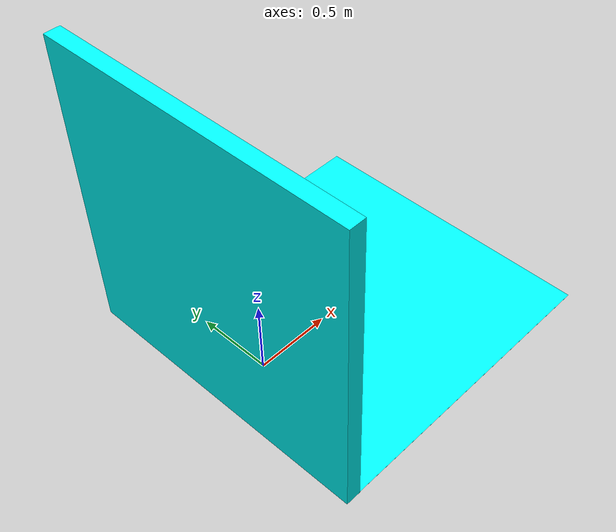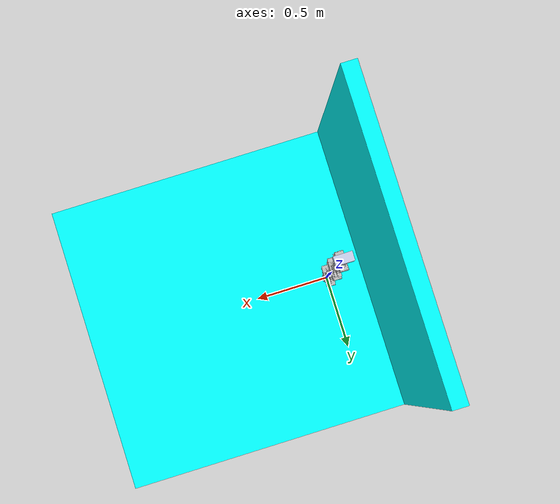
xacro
<?xml version="1.0"?>
<!-- Revolute-Revolute Manipulator -->
<robot name="robotarm_5DOF" xmlns:xacro="http://www.ros.org/wiki/xacro">

 <!-- Import all Gazebo-customization elements, including Gazebo colors -->
  <xacro:include filename="$(find manipulator_h_description)/urdf/robotarm_5DOF.gazebo" />

 <!-- Used for fixing robot to Gazebo 'base_link' -->
 <link name="world">
  </link>

  <joint name="world" type="fixed">
    <origin xyz="0 0 0" rpy="0 0 0"/>
    <parent link="world"/>
    <child link="base_link"/>
  </joint>

  <link name="base_link">
    <inertial>
      <origin
        xyz="0 0 0.12" rpy="0 0 1.57" />
      <mass
        value="0.854996764620972" />
      <inertia
        ixx="0.00127367657233133"
        ixy="-9.78923195537527E-13"
        ixz="-2.93635909372344E-13"
        iyy="0.00127209146192002"
        iyz="1.73326120869336E-07"
        izz="0.000375253307095422" />
    </inertial>
    <visual>
      <origin
        xyz="0 0 0.12" rpy="0 0 1.57" />
      <geometry>
        <mesh
          filename="package://manipulator_h_description/meshes_5DOF/base_link.STL" />
      </geometry>
      <material
        name="">
        <color
          rgba="0.792156862745098 0.819607843137255 0.929411764705882 1" />
      </material>
    </visual>
    <collision>
      <origin
        xyz="0 0 0.12" rpy="0 0 1.57" />
      <geometry>
        <mesh
          filename="package://manipulator_h_description/meshes_5DOF/base_link.STL" />
      </geometry>
    </collision>
  </link>

	<joint name="joint1" type="revolute">
		<origin xyz="0 0 0.159" rpy="0 0 0" />
		<parent link="base_link" />
		<child link="link1" />
        <limit velocity="6.5" effort="1000" lower="-3.14" upper="3.14" />
        <dynamics damping="1"/>
		<axis xyz="0 0 1" />
	</joint>

  <transmission name="tran1">
    <type>transmission_interface/SimpleTransmission</type>
    <joint name="joint1">
      <hardwareInterface>EffortJointInterface</hardwareInterface>
    </joint>
    <actuator name="motor1">
      <hardwareInterface>EffortJointInterface</hardwareInterface>
      <mechanicalReduction>1</mechanicalReduction>
    </actuator>
  </transmission>

  <link
    name="link1">
    <inertial>
      <origin
        xyz="0 0 -0.039" rpy="3.14 0 0" />
      <mass
        value="0.933973833115025" />
      <inertia
        ixx="0.00130038494228848"
        ixy="-2.95844372439728E-13"
        ixz="-3.01467763831998E-11"
        iyy="0.000422142499355785"
        iyz="-1.73339894386112E-07"
        izz="0.0013123580996147" />
    </inertial>
    <visual>
      <origin
        xyz="0 0 -0.039" rpy="3.14 0 0" />
      <geometry>
        <mesh
          filename="package://manipulator_h_description/meshes_5DOF/link1.STL" />
      </geometry>
      <material
        name="">
        <color
          rgba="0.752941176470588 0.752941176470588 0.752941176470588 1" />
      </material>
    </visual>
    <collision>
      <origin
        xyz="0 0 -0.039" rpy="3.14 0 0" />
      <geometry>
        <mesh
          filename="package://manipulator_h_description/meshes_5DOF/link1.STL" />
      </geometry>
    </collision>
  </link>

	<joint name="joint2" type="revolute">
		<origin xyz="0 0 0" rpy="1.57 0 0" />
		<parent link="link1" />
		<child link="link2" />
		<axis xyz="0 0 1" />
        <limit velocity="6.5" effort="1000" lower="-3.14" upper="3.14" />
        <dynamics damping="1"/>
	</joint>

  <transmission name="tran2">
    <type>transmission_interface/SimpleTransmission</type>
    <joint name="joint2">
      <hardwareInterface>EffortJointInterface</hardwareInterface>
    </joint>
    <actuator name="motor2">
      <hardwareInterface>EffortJointInterface</hardwareInterface>
      <mechanicalReduction>1</mechanicalReduction>
    </actuator>
  </transmission>

  <link
    name="link2">
    <inertial>
      <origin
        xyz="0 0 0"
        rpy="0 0 0" />
      <mass
        value="2.17233482675649" />
      <inertia
        ixx="0.012588710454961"
        ixy="3.24699537352499E-11"
        ixz="-1.73376873509498E-07"
        iyy="0.00229782223136213"
        iyz="-2.39564649019806E-07"
        izz="0.0112510434237469" />
    </inertial>
    <visual>
      <origin
        xyz="0 0 0"
        rpy="0 0 0" />
      <geometry>
        <mesh
          filename="package://manipulator_h_description/meshes_5DOF/link2.STL" />
      </geometry>
      <material
        name="">
        <color
          rgba="0.752941176470588 0.752941176470588 0.752941176470588 1" />
      </material>
    </visual>
    <collision>
      <origin
        xyz="0 0 0"
        rpy="0 0 0" />
      <geometry>
        <mesh
          filename="package://manipulator_h_description/meshes_5DOF/link2.STL" />
      </geometry>
    </collision>
  </link>

	<joint name="joint3" type="revolute">
		<origin xyz="0 0.548 0" rpy="0 0 0" />
		<parent
		  link="link2" />
		<child
		  link="link3" />
		<axis
		  xyz="0 0 1" />
        <limit velocity="6.5" effort="1000" lower="-3.14" upper="3.14" />
        <dynamics damping="1"/>
	</joint>

  <transmission name="tran3">
    <type>transmission_interface/SimpleTransmission</type>
    <joint name="joint3">
      <hardwareInterface>EffortJointInterface</hardwareInterface>
    </joint>
    <actuator name="motor3">
      <hardwareInterface>EffortJointInterface</hardwareInterface>
      <mechanicalReduction>1</mechanicalReduction>
    </actuator>
  </transmission>

  <link
    name="link3">
    <inertial>
      <origin
        xyz="0 0 0"
        rpy="0 0 0" />
      <mass
        value="2.03963402194097" />
      <inertia
        ixx="0.0121595677954515"
        ixy="1.8895677510483E-12"
        ixz="1.26403080065892E-07"
        iyy="0.00186854119614137"
        iyz="-2.39564391781716E-07"
        izz="0.011185917848878" />
    </inertial>
    <visual>
      <origin
        xyz="0 0 0"
        rpy="0 0 0" />
      <geometry>
        <mesh
          filename="package://manipulator_h_description/meshes_5DOF/link3.STL" />
      </geometry>
      <material
        name="">
        <color
          rgba="0.752941176470588 0.752941176470588 0.752941176470588 1" />
      </material>
    </visual>
    <collision>
      <origin
        xyz="0 0 0"
        rpy="0 0 0" />
      <geometry>
        <mesh
          filename="package://manipulator_h_description/meshes_5DOF/link3.STL" />
      </geometry>
    </collision>
  </link>

	<joint name="joint4" type="revolute">
		<origin xyz="0 0.548 0" rpy="0 0 0" />
		<parent link="link3" />
		<child link="link4" />
		<axis xyz="0 0 1" />
        <limit velocity="6.5" effort="1000" lower="-3.14" upper="3.14" />
        <dynamics damping="0.7"/>
	</joint>

  <transmission name="tran4">
    <type>transmission_interface/SimpleTransmission</type>
    <joint name="joint4">
      <hardwareInterface>EffortJointInterface</hardwareInterface>
    </joint>
    <actuator name="motor4">
      <hardwareInterface>EffortJointInterface</hardwareInterface>
      <mechanicalReduction>1</mechanicalReduction>
    </actuator>
  </transmission>

  <link
    name="link4">
    <inertial>
      <origin
        xyz="-5.84108303602587E-11 0.093757042570968 0.000563667312071903"
        rpy="0 0 0" />
      <mass
        value="0.86104149872866" />
      <inertia ixx="1.0" ixy="0.0" ixz="0.0" iyy="1.0" iyz="0.0" izz="1.0" />
    </inertial>
    <visual>
      <origin
        xyz="0 0 0"
        rpy="0 0 0" />
      <geometry>
        <mesh
          filename="package://manipulator_h_description/meshes_5DOF/link4.STL" />
      </geometry>
      <material
        name="">
        <color
          rgba="0.752941176470588 0.752941176470588 0.752941176470588 1" />
      </material>
    </visual>
    <collision>
      <origin
        xyz="0 0 0"
        rpy="0 0 0" />
      <geometry>
        <mesh
          filename="package://manipulator_h_description/meshes_5DOF/link4.STL" />
      </geometry>
    </collision>
  </link>

	<joint name="joint5" type="revolute">
		<origin xyz="0 0.159 0" rpy="0 0 0" />
		<parent link="link4" />
		<child link="end" />
		<axis xyz="0 1 0" />
        <limit velocity="6.5" effort="1000" lower="-3.14" upper="3.14" />
        <dynamics damping="0.7"/>
	</joint>

  <transmission name="tran5">
    <type>transmission_interface/SimpleTransmission</type>
    <joint name="joint5">
      <hardwareInterface>EffortJointInterface</hardwareInterface>
    </joint>
    <actuator name="motor5">
      <hardwareInterface>EffortJointInterface</hardwareInterface>
      <mechanicalReduction>1</mechanicalReduction>
    </actuator>
  </transmission>

  <link
    name="end">
    <inertial>
      <origin
        xyz="0 0.03 0"
        rpy="0 0 0" />
      <mass
        value="0.01" />
       <inertia ixx="1.0" ixy="0.0" ixz="0.0" iyy="1.0" iyz="0.0" izz="1.0" />
    </inertial>
    <visual>
      <origin
        xyz="0 0.06 0"
        rpy="0 0 0" />
      <geometry>
        <mesh
          filename="package://manipulator_h_description/meshes_5DOF/end.STL" />
      </geometry>
      <material
        name="">
        <color
          rgba="0.792156862745098 0.819607843137255 0.933333333333333 1" />
      </material>
    </visual>
    <collision>
      <origin
        xyz="0 0.06 0"
        rpy="0 0 0" />
      <geometry>
        <mesh
          filename="package://manipulator_h_description/meshes_5DOF/end.STL" />
      </geometry>
    </collision>
  </link>

  <link name="wall">
     <inertial>
       <origin xyz="-0.15 0 0" rpy="0 0 0"/>
       <mass value="1000"/>
       <inertia ixx="100"  ixy="0"  ixz="0" iyy="100" iyz="0" izz="100" />
     </inertial>

     <visual>
       <origin xyz="-0.15 0 0" rpy="0 0 0" />
      <geometry>
        <box size="0.1 2 2" />
      </geometry>
      <material name="Cyan">
        <color rgba="0 1.0 1.0 1.0"/>
      </material>
    </visual>

    <collision>
      <origin xyz="-0.15 0 0" rpy="0 0 0"/>
      <geometry>
        <box size="0.1 2 2" />
      </geometry>
    </collision>
 </link>

 <joint name="wall_joint" type="fixed">
   <parent link="world"/>
   <child link="wall"/>
   <origin xyz="-0.15 0 1"/>
 </joint>

 <link name="floor">
    <inertial>
      <origin xyz="0 0 0.001" rpy="0 0 0"/>
      <mass value="1000"/>
      <inertia ixx="1"  ixy="0"  ixz="0" iyy="1" iyz="0" izz="1" />
    </inertial>

    <visual>
      <origin xyz="0 0 0.001" rpy="0 0 0" />
     <geometry>
       <box size="2 2 0.001" />
     </geometry>
     <material name="Cyan">
       <color rgba="0 1.0 1.0 1.0"/>
     </material>
   </visual>

   <collision>
     <origin xyz="0 0 0.001" rpy="0 0 0"/>
     <geometry>
       <box size="2 2 0.001" />
     </geometry>
   </collision>
</link>

<joint name="floor_joint" type="fixed">
  <parent link="world"/>
  <child link="floor"/>
  <origin xyz="0.7 0 0.005"/>
</joint>

 <gazebo>
    <plugin name="gazebo_ros_control" filename="libgazebo_ros_control.so">
      <robotSimType>gazebo_ros_control/DefaultRobotHWSim</robotSimType>
      <legacyModeNS>true</legacyModeNS>
    </plugin>
  </gazebo>

</robot>
